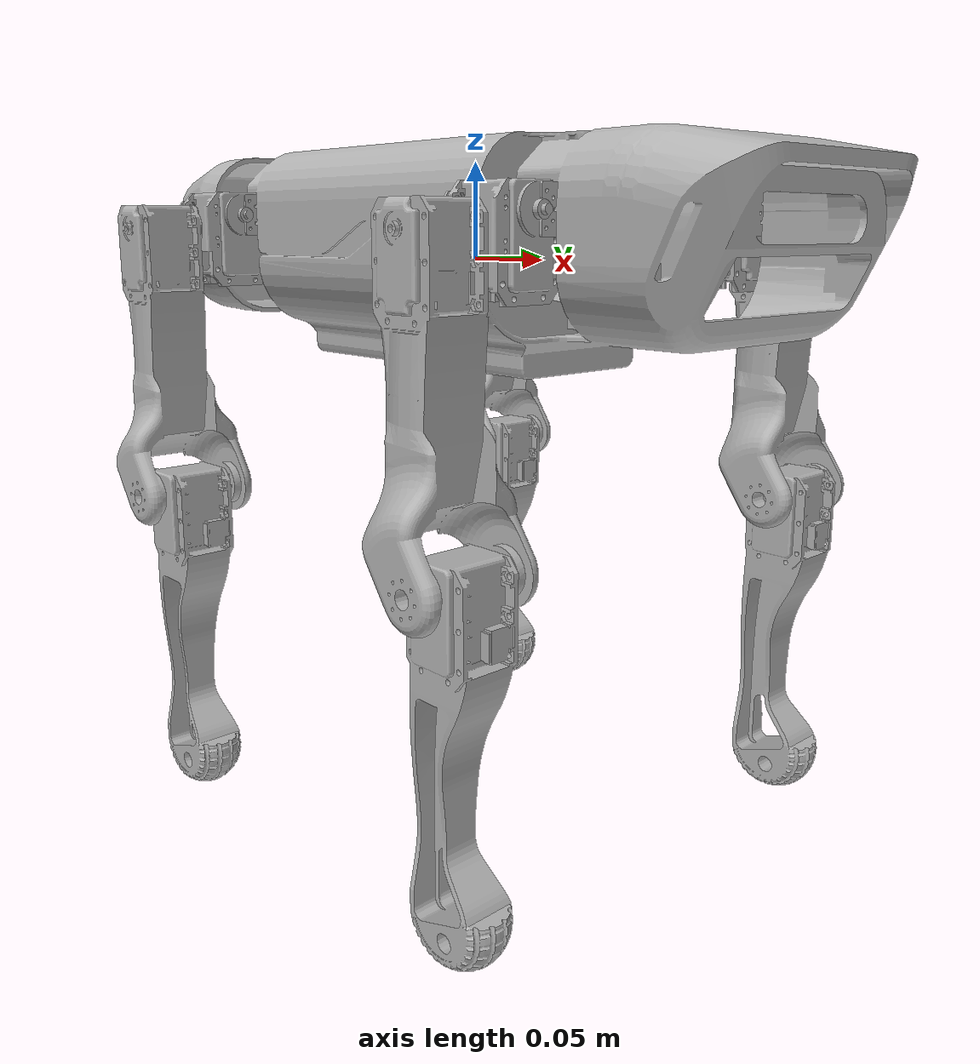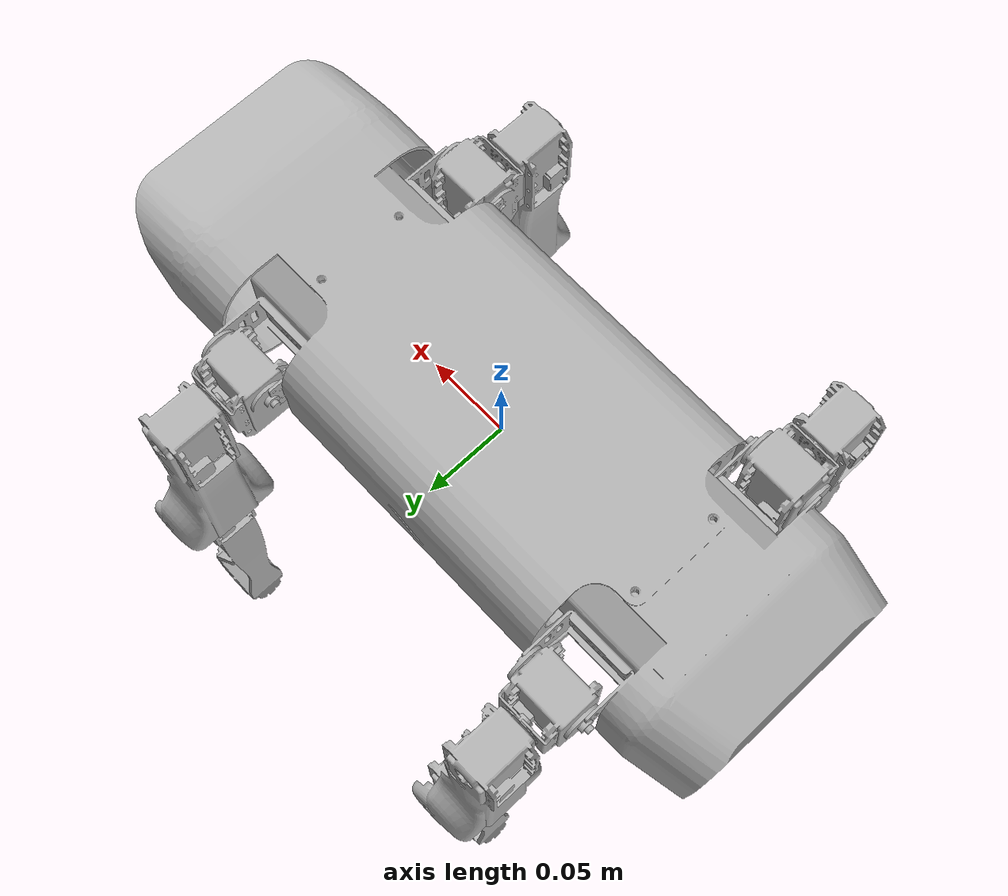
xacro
<?xml version="1.0" ?>
<robot name="greyh_urdfv3" xmlns:xacro="http://www.ros.org/wiki/xacro">

<xacro:include filename="$(find greyh_urdfv3_description)/urdf/materials.xacro" />
<xacro:include filename="$(find greyh_urdfv3_description)/urdf/greyh_urdfv3.trans" />
<xacro:include filename="$(find greyh_urdfv3_description)/urdf/greyh_urdfv3.gazebo" />
<link name="base_link">
  <inertial>
    <origin rpy="0 0 0" xyz="-0.00042512772851683624 0.004221638435313149 0.015589862245031361"/>
    <mass value="6.554383863160311"/>
    <inertia ixx="0.098759" ixy="-3.7e-05" ixz="-7.8e-05" iyy="0.019695" iyz="0.000685" izz="0.104316"/>
  </inertial>
  <visual>
    <origin rpy="0 0 1.5708" xyz="0 0 0"/>
    <geometry>
      <mesh filename="package://greyh_urdfv3_description/meshes/base_link.stl" scale="0.001 0.001 0.001"/>
    </geometry>
    <material name="silver"/>
  </visual>
  <collision>
    <origin rpy="0 0 0" xyz="0 0 0"/>
    <geometry>
      <mesh filename="package://greyh_urdfv3_description/meshes/base_link.stl" scale="0.001 0.001 0.001"/>
    </geometry>
  </collision>
</link>

<link name="Servo_top_back_right_1">
  <inertial>
    <origin rpy="0 0 0" xyz="-0.0005774475532295958 -0.02045456069004066 -0.0109329246527541"/>
    <mass value="0.36497544273328236"/>
    <inertia ixx="0.000106" ixy="-0.0" ixz="1e-06" iyy="8.8e-05" iyz="1e-06" izz="7e-05"/>
  </inertial>
  <visual>
    <origin rpy="0 0 1.5708" xyz="0.1218 0.080703 -0.023266"/>
    <geometry>
      <mesh filename="package://greyh_urdfv3_description/meshes/Servo_top_back_right_1.stl" scale="0.001 0.001 0.001"/>
    </geometry>
    <material name="silver"/>
  </visual>
  <collision>
    <origin rpy="0 0 0" xyz="0.080698 -0.142289 -0.023266"/>
    <geometry>
      <mesh filename="package://greyh_urdfv3_description/meshes/Servo_top_back_right_1.stl" scale="0.001 0.001 0.001"/>
    </geometry>
  </collision>
</link>

<link name="Servo_top_back_left_1">
  <inertial>
    <origin rpy="0 0 0" xyz="0.0005773081177468803 -0.02054559851620981 -0.010932924656279847"/>
    <mass value="0.36497544270669313"/>
    <inertia ixx="0.000106" ixy="-0.0" ixz="-1e-06" iyy="8.8e-05" iyz="-1e-06" izz="7e-05"/>
  </inertial>
  <visual>
    <origin rpy="0 0 1.5708" xyz="0.1218 -0.080703 -0.023266"/>
    <geometry>
      <mesh filename="package://greyh_urdfv3_description/meshes/Servo_top_back_left_1.stl" scale="0.001 0.001 0.001"/>
    </geometry>
    <material name="silver"/>
  </visual>
  <collision>
    <origin rpy="0 0 0" xyz="-0.080703 -0.142289 -0.023266"/>
    <geometry>
      <mesh filename="package://greyh_urdfv3_description/meshes/Servo_top_back_left_1.stl" scale="0.001 0.001 0.001"/>
    </geometry>
  </collision>
</link>

<link name="Servo_top_front_left_1">
  <inertial>
    <origin rpy="0 0 0" xyz="0.0005773081177797013 -0.0205456303999636 -0.01093292465627984"/>
    <mass value="0.36497544270669446"/>
    <inertia ixx="0.000106" ixy="-0.0" ixz="-1e-06" iyy="8.8e-05" iyz="-1e-06" izz="7e-05"/>
  </inertial>
  <visual>
    <origin rpy="0 0 1.5708" xyz="-0.1063 -0.080703 -0.023266"/>
    <geometry>
      <mesh filename="package://greyh_urdfv3_description/meshes/Servo_top_front_left_1.stl" scale="0.001 0.001 0.001"/>
    </geometry>
    <material name="silver"/>
  </visual>
  <collision>
    <origin rpy="0 0 0" xyz="-0.080703 0.085811 -0.023266"/>
    <geometry>
      <mesh filename="package://greyh_urdfv3_description/meshes/Servo_top_front_left_1.stl" scale="0.001 0.001 0.001"/>
    </geometry>
  </collision>
</link>

<link name="Servo_top_right_front_1">
  <inertial>
    <origin rpy="0 0 0" xyz="-0.0005774475531919732 -0.020454592573804428 -0.010932924652754182"/>
    <mass value="0.36497544273328253"/>
    <inertia ixx="0.000106" ixy="-0.0" ixz="1e-06" iyy="8.8e-05" iyz="1e-06" izz="7e-05"/>
  </inertial>
  <visual>
    <origin rpy="0 0 1.5708" xyz="-0.1063 0.080703 -0.023266"/>
    <geometry>
      <mesh filename="package://greyh_urdfv3_description/meshes/Servo_top_right_front_1.stl" scale="0.001 0.001 0.001"/>
    </geometry>
    <material name="silver"/>
  </visual>
  <collision>
    <origin rpy="0 0 0" xyz="0.080698 0.085811 -0.023266"/>
    <geometry>
      <mesh filename="package://greyh_urdfv3_description/meshes/Servo_top_right_front_1.stl" scale="0.001 0.001 0.001"/>
    </geometry>
  </collision>
</link>

<link name="Top_leg_front_right_1">
  <inertial>
    <origin rpy="0 0 0" xyz="-0.020836314076387474 0.050844295953702955 -0.042522056832365956"/>
    <mass value="1.1847103675731914"/>
    <inertia ixx="0.002514" ixy="1.2e-05" ixz="-1e-05" iyy="0.001363" iyz="0.001144" izz="0.001638"/>
  </inertial>
  <visual>
    <origin rpy="-0.907571 0 1.5708" xyz="-0.0532 0.123 -0.0934"/>
    <geometry>
      <mesh filename="package://greyh_urdfv3_description/meshes/Top_leg_front_right_1.stl" scale="0.001 0.001 0.001"/>
    </geometry>
    <material name="silver"/>
  </visual>
  <collision>
    <origin rpy="0 0 0" xyz="0.101978 0.106311 -0.015516"/>
    <geometry>
      <mesh filename="package://greyh_urdfv3_description/meshes/Top_leg_front_right_1.stl" scale="0.001 0.001 0.001"/>
    </geometry>
  </collision>
</link>

<link name="Top_leg_back_right_1">
  <inertial>
    <origin rpy="0 0 0" xyz="-0.020836314076420448 0.050844175983900466 -0.0425220568323678"/>
    <mass value="1.1847103675731914"/>
    <inertia ixx="0.002514" ixy="1.2e-05" ixz="-1e-05" iyy="0.001363" iyz="0.001144" izz="0.001638"/>
  </inertial>
  <visual>
    <origin rpy="-0.907571 0 1.5708" xyz="0.0873 0.123 0.0865"/>
    <geometry>
      <mesh filename="package://greyh_urdfv3_description/meshes/Top_leg_back_right_1.stl" scale="0.001 0.001 0.001"/>
    </geometry>
    <material name="silver"/>
  </visual>
  <collision>
    <origin rpy="0 0 0" xyz="0.101978 -0.121789 -0.015516"/>
    <geometry>
      <mesh filename="package://greyh_urdfv3_description/meshes/Top_leg_back_right_1.stl" scale="0.001 0.001 0.001"/>
    </geometry>
  </collision>
</link>

<link name="Top_leg_front_left_1">
  <inertial>
    <origin rpy="0 0 0" xyz="0.020836211137286717 0.050844311873227535 -0.04252207117129895"/>
    <mass value="1.1847100227572713"/>
    <inertia ixx="0.002514" ixy="-1.2e-05" ixz="1e-05" iyy="0.001363" iyz="0.001144" izz="0.001638"/>
  </inertial>
  <visual>
    <origin rpy="-0.907571 0 1.5708" xyz="-0.0532 -0.123 -0.0934"/>
    <geometry>
      <mesh filename="package://greyh_urdfv3_description/meshes/Top_leg_front_left_1.stl" scale="0.001 0.001 0.001"/>
    </geometry>
    <material name="silver"/>
  </visual>
  <collision>
    <origin rpy="0 0 0" xyz="-0.101983 0.106311 -0.015516"/>
    <geometry>
      <mesh filename="package://greyh_urdfv3_description/meshes/Top_leg_front_left_1.stl" scale="0.001 0.001 0.001"/>
    </geometry>
  </collision>
</link>

<link name="Top_leg_back_left_1">
  <inertial>
    <origin rpy="0 0 0" xyz="0.0208362111372576 0.05084419190341423 -0.042522071171296534"/>
    <mass value="1.1847100227572713"/>
    <inertia ixx="0.002514" ixy="-1.2e-05" ixz="1e-05" iyy="0.001363" iyz="0.001144" izz="0.001638"/>
  </inertial>
  <visual>
    <origin rpy="-0.907571 0 1.5708" xyz="0.0873 -0.123 0.0865"/>
    <geometry>
      <mesh filename="package://greyh_urdfv3_description/meshes/Top_leg_back_left_1.stl" scale="0.001 0.001 0.001"/>
    </geometry>
    <material name="silver"/>
  </visual>
  <collision>
    <origin rpy="0 0 0" xyz="-0.101983 -0.121789 -0.015516"/>
    <geometry>
      <mesh filename="package://greyh_urdfv3_description/meshes/Top_leg_back_left_1.stl" scale="0.001 0.001 0.001"/>
    </geometry>
  </collision>
</link>

<link name="Lower_leg_front_left_1">
  <inertial>
    <origin rpy="0 0 0" xyz="-0.017674250412893708 -0.035632881583845546 -0.049225936009879775"/>
    <mass value="0.7102156699004443"/>
    <inertia ixx="0.002727" ixy="2e-06" ixz="3e-06" iyy="0.001861" iyz="-0.001211" izz="0.000974"/>
  </inertial>
  <visual>

    <origin rpy="0.610865 0 -1.5708" xyz="-0.0442 0.123 0.0745"/>
    <geometry>
      <mesh filename="package://greyh_urdfv3_description/meshes/Lower_leg_front_left_1.stl" scale="0.001 0.001 0.001"/>
    </geometry>
    <material name="silver"/>
  </visual>
  <collision>
    <origin rpy="0 0 0" xyz="-0.140653 0.006595 0.08644"/>
    <geometry>
      <mesh filename="package://greyh_urdfv3_description/meshes/Lower_leg_front_left_1.stl" scale="0.001 0.001 0.001"/>
    </geometry>
  </collision>
</link>

<link name="Lower_leg_back_left_1">
  <inertial>
    <origin rpy="0 0 0" xyz="-0.01767425041291204 -0.03563300155365895 -0.049225936009877416"/>
    <mass value="0.7102156699004443"/>
    <inertia ixx="0.002727" ixy="2e-06" ixz="3e-06" iyy="0.001861" iyz="-0.001211" izz="0.000974"/>
  </inertial>
  <visual>
    <origin rpy="0.610865 0 -1.5708" xyz="-0.231 0.123 -0.0563"/>
    <geometry>
      <mesh filename="package://greyh_urdfv3_description/meshes/Lower_leg_back_left_1.stl" scale="0.001 0.001 0.001"/>
    </geometry>
    <material name="silver"/>
  </visual>
  <collision>
    <origin rpy="0 0 0" xyz="-0.140653 -0.221505 0.08644"/>
    <geometry>
      <mesh filename="package://greyh_urdfv3_description/meshes/Lower_leg_back_left_1.stl" scale="0.001 0.001 0.001"/>
    </geometry>
  </collision>
</link>

<link name="Lower_leg_back_right_1">
  <inertial>
    <origin rpy="0 0 0" xyz="0.019326388704308667 -0.03563300155366442 -0.04922593600987639"/>
    <mass value="0.7102156699004443"/>
    <inertia ixx="0.002727" ixy="2e-06" ixz="3e-06" iyy="0.001861" iyz="-0.001211" izz="0.000974"/>
  </inertial>
  <visual>
    <origin rpy="0.610865 0 -1.5708" xyz="-0.231 -0.123 -0.0563"/>
    <geometry>
      <mesh filename="package://greyh_urdfv3_description/meshes/Lower_leg_back_right_1.stl" scale="0.001 0.001 0.001"/>
    </geometry>
    <material name="silver"/>
  </visual>
  <collision>
    <origin rpy="0 0 0" xyz="0.142148 -0.221505 0.08644"/>
    <geometry>
      <mesh filename="package://greyh_urdfv3_description/meshes/Lower_leg_back_right_1.stl" scale="0.001 0.001 0.001"/>
    </geometry>
  </collision>
</link>

<link name="Lower_leg_front_right_1">
  <inertial>
    <origin rpy="0 0 0" xyz="0.019326388704328998 -0.03563288158386184 -0.049225936009874696"/>
    <mass value="0.7102156699004443"/>
    <inertia ixx="0.002727" ixy="2e-06" ixz="3e-06" iyy="0.001861" iyz="-0.001211" izz="0.000974"/>
  </inertial>
  <visual>
    <origin rpy="0.610865 0 -1.5708" xyz="-0.0442 -0.123 0.0745"/>
    <geometry>
      <mesh filename="package://greyh_urdfv3_description/meshes/Lower_leg_front_right_1.stl" scale="0.001 0.001 0.001"/>
    </geometry>
    <material name="silver"/>
  </visual>
  <collision>
    <origin rpy="0 0 0" xyz="0.142148 0.006595 0.08644"/>
    <geometry>
      <mesh filename="package://greyh_urdfv3_description/meshes/Lower_leg_front_right_1.stl" scale="0.001 0.001 0.001"/>
    </geometry>
  </collision>
</link>

<link name="front_left_foot" />
<link name="front_right_foot" />
<link name="back_left_foot" />
<link name="back_right_foot" />

<joint name="Rev1" type="continuous">
  <origin rpy="0 0 0" xyz="-0.1218 -0.080703 0.023266"/>
  <parent link="base_link"/>
  <child link="Servo_top_back_right_1"/>
  <axis xyz="1 0 0"/>
</joint>

<joint name="Rev2" type="continuous">
  <origin rpy="0 0 0" xyz="-0.1218 0.080703 0.023266"/>
  <parent link="base_link"/>
  <child link="Servo_top_back_left_1"/>
  <axis xyz="1 0 0"/>
</joint>

<joint name="Rev3" type="continuous">
  <origin rpy="0 0 0" xyz="0.1065 0.080703 0.023266"/>

  <parent link="base_link"/>
  <child link="Servo_top_front_left_1"/>
  <axis xyz="1 0 0"/>
</joint>

<joint name="Rev4" type="continuous">
  <origin rpy="0 0 0" xyz="0.1065 -0.080703 0.023266"/>
  <parent link="base_link"/>
  <child link="Servo_top_right_front_1"/>
  <axis xyz="1 0 0"/>
</joint>

<joint name="Rev5" type="continuous">
  <origin rpy="0 0 0" xyz="0 -0.041 -.0075"/>
  <parent link="Servo_top_right_front_1"/>
  <child link="Top_leg_front_right_1"/>
  <axis xyz="0 1 0 "/>
</joint>

<joint name="Rev6" type="continuous">
  <origin rpy="0 0 0" xyz="0 -0.041 -.0075"/>
  <parent link="Servo_top_back_right_1"/>
  <child link="Top_leg_back_right_1"/>
  <axis xyz="0 1 0 "/>
</joint>

<joint name="Rev7" type="continuous">
  <origin rpy="0 0 0" xyz="0 0.041 -.0075"/>
  <parent link="Servo_top_front_left_1"/>
  <child link="Top_leg_front_left_1"/>
  <axis xyz="0 1 0 "/>
</joint>

<joint name="Rev8" type="continuous">
  <origin rpy="0 0 0" xyz="0 0.041 -.0075"/>
  <parent link="Servo_top_back_left_1"/>
  <child link="Top_leg_back_left_1"/>
  <axis xyz="0 1 0 "/>
</joint>

<joint name="Rev9" type="continuous">
  <origin rpy="0 0 0" xyz="0.019 0 -0.142"/>
  <parent link="Top_leg_front_left_1"/>
  <child link="Lower_leg_front_left_1"/>
  <axis xyz="0 1 0 "/>
</joint>

<joint name="Rev10" type="continuous">
  <origin rpy="0 0 0" xyz="0.019 0 -0.142"/>
  <parent link="Top_leg_back_left_1"/>
  <child link="Lower_leg_back_left_1"/>
  <axis xyz="0 1 0 "/>
</joint>

<joint name="Rev11" type="continuous">
  <origin rpy="0 0 0" xyz="0.019 0 -0.142"/>
  <parent link="Top_leg_back_right_1"/>
  <child link="Lower_leg_back_right_1"/>
  <axis xyz="0 1 0 "/>
</joint>

<joint name="Rev12" type="continuous">
  <origin rpy="0 0 0" xyz="0.019 0 -0.142"/>
  <parent link="Top_leg_front_right_1"/>
  <child link="Lower_leg_front_right_1"/>
  <axis xyz="0 1 0 "/>
</joint>

<joint name="Rev13" type="fixed">
  <origin rpy="0 0 0" xyz="0 0 -0.176"/>
  <parent link="Lower_leg_front_left_1"/>
  <child link="front_left_foot"/>
</joint>

<joint name="Rev14" type="fixed">
  <origin rpy="0 0 0" xyz="0 0 -0.176"/>
  <parent link="Lower_leg_back_left_1"/>
  <child link="back_left_foot"/>
</joint>

<joint name="Rev15" type="fixed">
  <origin rpy="0 0 0" xyz="0 0 -0.176"/>
  <parent link="Lower_leg_back_right_1"/>
  <child link="back_right_foot"/>
</joint>

<joint name="Rev16" type="fixed">
  <origin rpy="0 0 0" xyz="0 0 -0.176"/>
  <parent link="Lower_leg_front_right_1"/>
  <child link="front_right_foot"/>
</joint>

</robot>

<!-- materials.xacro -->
<robot name="greyh_urdfv3" xmlns:xacro="http://www.ros.org/wiki/xacro" >

<material name="silver">
  <color rgba="0.700 0.700 0.700 1.000"/>
</material>

</robot>

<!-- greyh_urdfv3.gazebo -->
<robot name="greyh_urdfv3" xmlns:xacro="http://www.ros.org/wiki/xacro" >

<xacro:property name="body_color" value="Gazebo/Silver" />

<gazebo>
  <plugin filename="libgazebo_ros_control.so" name="control"/>
</gazebo>
<gazebo reference="base_link">
  <material>${body_color}</material>
  <mu1>0.2</mu1>
  <mu2>0.2</mu2>
  <selfCollide>true</selfCollide>
  <gravity>true</gravity>
</gazebo>

<gazebo reference="Servo_top_back_right_1">
  <material>${body_color}</material>
  <mu1>0.2</mu1>
  <mu2>0.2</mu2>
  <selfCollide>true</selfCollide>
</gazebo>

<gazebo reference="Servo_top_back_left_1">
  <material>${body_color}</material>
  <mu1>0.2</mu1>
  <mu2>0.2</mu2>
  <selfCollide>true</selfCollide>
</gazebo>

<gazebo reference="Servo_top_front_left_1">
  <material>${body_color}</material>
  <mu1>0.2</mu1>
  <mu2>0.2</mu2>
  <selfCollide>true</selfCollide>
</gazebo>

<gazebo reference="Servo_top_right_front_1">
  <material>${body_color}</material>
  <mu1>0.2</mu1>
  <mu2>0.2</mu2>
  <selfCollide>true</selfCollide>
</gazebo>

<gazebo reference="Top_leg_front_right_1">
  <material>${body_color}</material>
  <mu1>0.2</mu1>
  <mu2>0.2</mu2>
  <selfCollide>true</selfCollide>
</gazebo>

<gazebo reference="Top_leg_back_right_1">
  <material>${body_color}</material>
  <mu1>0.2</mu1>
  <mu2>0.2</mu2>
  <selfCollide>true</selfCollide>
</gazebo>

<gazebo reference="Top_leg_front_left_1">
  <material>${body_color}</material>
  <mu1>0.2</mu1>
  <mu2>0.2</mu2>
  <selfCollide>true</selfCollide>
</gazebo>

<gazebo reference="Top_leg_back_left_1">
  <material>${body_color}</material>
  <mu1>0.2</mu1>
  <mu2>0.2</mu2>
  <selfCollide>true</selfCollide>
</gazebo>

<gazebo reference="Lower_leg_front_left_1">
  <material>${body_color}</material>
  <mu1>0.2</mu1>
  <mu2>0.2</mu2>
  <selfCollide>true</selfCollide>
</gazebo>

<gazebo reference="Lower_leg_back_left_1">
  <material>${body_color}</material>
  <mu1>0.2</mu1>
  <mu2>0.2</mu2>
  <selfCollide>true</selfCollide>
</gazebo>

<gazebo reference="Lower_leg_back_right_1">
  <material>${body_color}</material>
  <mu1>0.2</mu1>
  <mu2>0.2</mu2>
  <selfCollide>true</selfCollide>
</gazebo>

<gazebo reference="Lower_leg_front_right_1">
  <material>${body_color}</material>
  <mu1>0.2</mu1>
  <mu2>0.2</mu2>
  <selfCollide>true</selfCollide>
</gazebo>

</robot>
